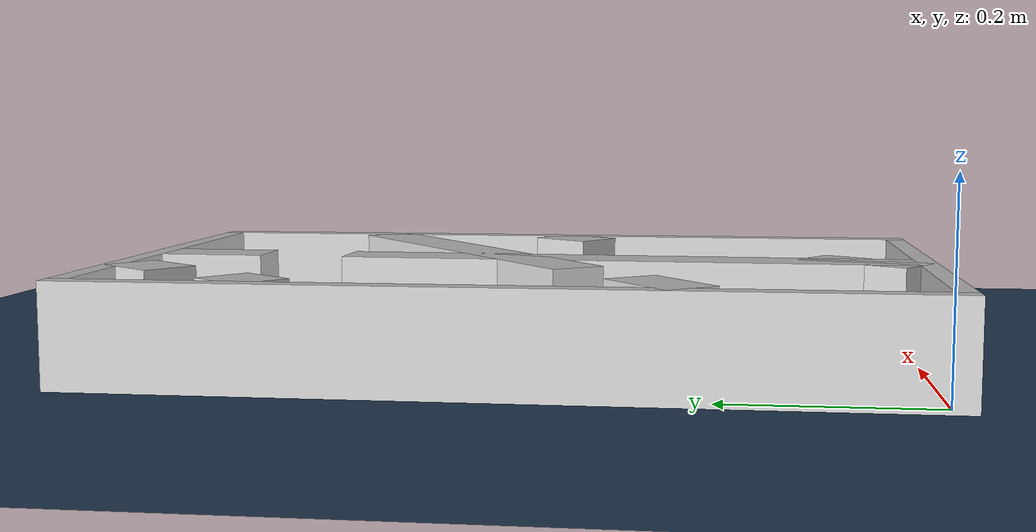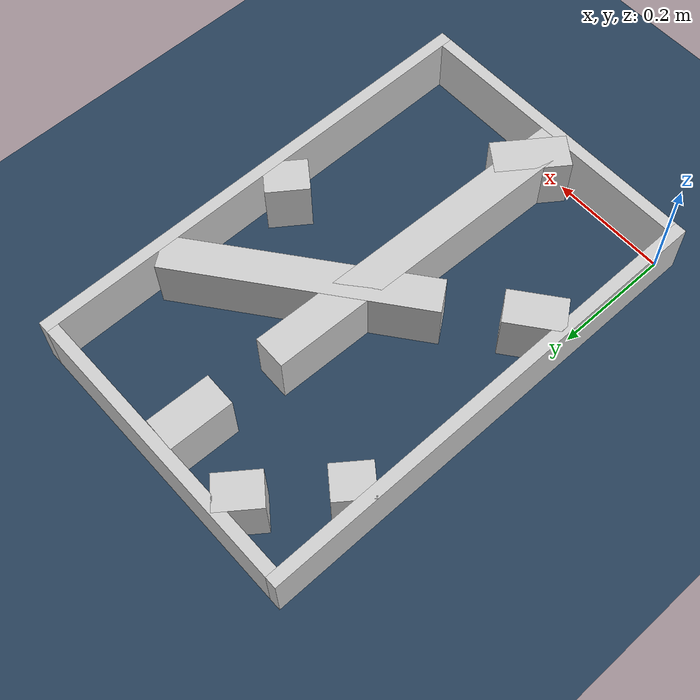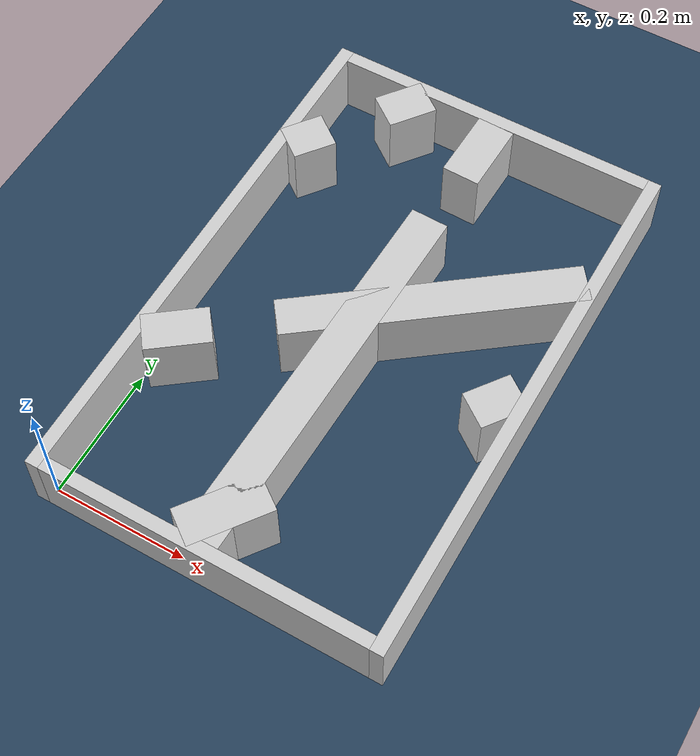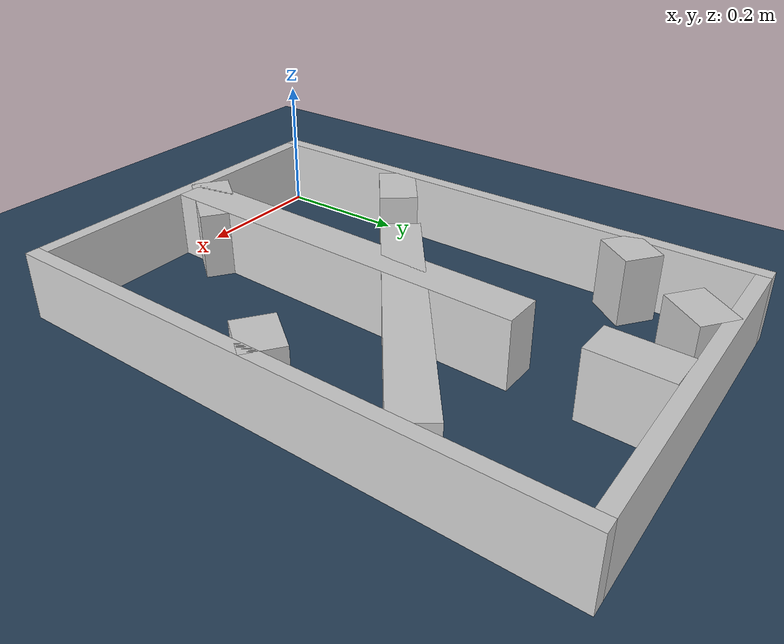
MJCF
<?xml version="1.0" ?>
<mujoco model="generated_real_template">
  <compiler angle="degree"/>
  <option timestep="0.002" integrator="implicitfast" iterations="100" cone="elliptic"/>
  <default>
    <geom density="1"/>
  </default>
  <asset>
    <texture builtin="gradient" height="3072" rgb1="0.3 0.5 0.7" rgb2="0 0 0" type="skybox" width="512"/>
    <texture builtin="checker" height="300" mark="edge" markrgb="0.8 0.8 0.8" name="groundplane" rgb1="0.2 0.3 0.4" rgb2="0.1 0.2 0.3" type="2d" width="300"/>
    <material name="groundplane" reflectance="0.2" texrepeat="5 5" texture="groundplane" texuniform="true"/>
  </asset>
  <worldbody>
    <light dir="0 0 -1" directional="true" pos="0 0 1.5"/>
    <geom name="floor" type="plane" condim="4" friction="0.5 0.005 0.001" material="groundplane" size="0 0 0.05"/>
    <body name="walls">
      <geom name="wall_boundary_left" type="box" condim="4" friction="1.0 0.005 0.0001" rgba="0.8 0.8 0.8 1" pos="-0.010000 0.387500 0.050000" euler="0 0 0.000000" size="0.010000 0.407500 0.050000"/>
      <geom name="wall_boundary_right" type="box" condim="4" friction="1.0 0.005 0.0001" rgba="0.8 0.8 0.8 1" pos="0.500000 0.387500 0.050000" euler="0 0 0.000000" size="0.010000 0.407500 0.050000"/>
      <geom name="wall_boundary_bottom" type="box" condim="4" friction="1.0 0.005 0.0001" rgba="0.8 0.8 0.8 1" pos="0.245000 -0.010000 0.050000" euler="0 0 0.000000" size="0.245000 0.010000 0.050000"/>
      <geom name="wall_boundary_top" type="box" condim="4" friction="1.0 0.005 0.0001" rgba="0.8 0.8 0.8 1" pos="0.245000 0.785000 0.050000" euler="0 0 0.000000" size="0.245000 0.010000 0.050000"/>
      <geom name="wall_inner_1_1" type="box" condim="4" friction="1.0 0.005 0.0001" rgba="0.8 0.8 0.8 1" pos="0.038045 0.246279 0.050000" euler="0 0 37.278117" size="0.047812 0.028500 0.050000"/>
      <geom name="wall_inner_1_2" type="box" condim="4" friction="1.0 0.005 0.0001" rgba="0.8 0.8 0.8 1" pos="0.317856 0.459270 0.050000" euler="0 0 37.278117" size="0.216341 0.028500 0.050000"/>
      <geom name="wall_inner_2_1" type="box" condim="4" friction="1.0 0.005 0.0001" rgba="0.8 0.8 0.8 1" pos="0.252176 0.720971 0.050000" euler="0 0 -91.493388" size="0.054048 0.028500 0.050000"/>
      <geom name="wall_inner_2_2" type="box" condim="4" friction="1.0 0.005 0.0001" rgba="0.8 0.8 0.8 1" pos="0.240934 0.289777 0.050000" euler="0 0 -91.493388" size="0.289875 0.028500 0.050000"/>
      <geom name="wall_inner_3_1" type="box" condim="4" friction="1.0 0.005 0.0001" rgba="0.8 0.8 0.8 1" pos="0.238781 0.049879 0.050000" euler="0 0 53.857594" size="0.061766 0.028500 0.050000"/>
      <geom name="wall_inner_3_2" type="box" condim="4" friction="1.0 0.005 0.0001" rgba="0.8 0.8 0.8 1" pos="0.465744 0.360639 0.050000" euler="0 0 53.857594" size="0.036012 0.028500 0.050000"/>
      <geom name="wall_inner_4_1" type="box" condim="4" friction="1.0 0.005 0.0001" rgba="0.8 0.8 0.8 1" pos="0.117078 0.745403 0.050000" euler="0 0 -127.264492" size="0.037190 0.028500 0.050000"/>
      <geom name="wall_inner_4_2" type="box" condim="4" friction="1.0 0.005 0.0001" rgba="0.8 0.8 0.8 1" pos="0.022393 0.620951 0.050000" euler="0 0 -127.264492" size="0.032553 0.028500 0.050000"/>
    </body>
  </worldbody>
</mujoco>
